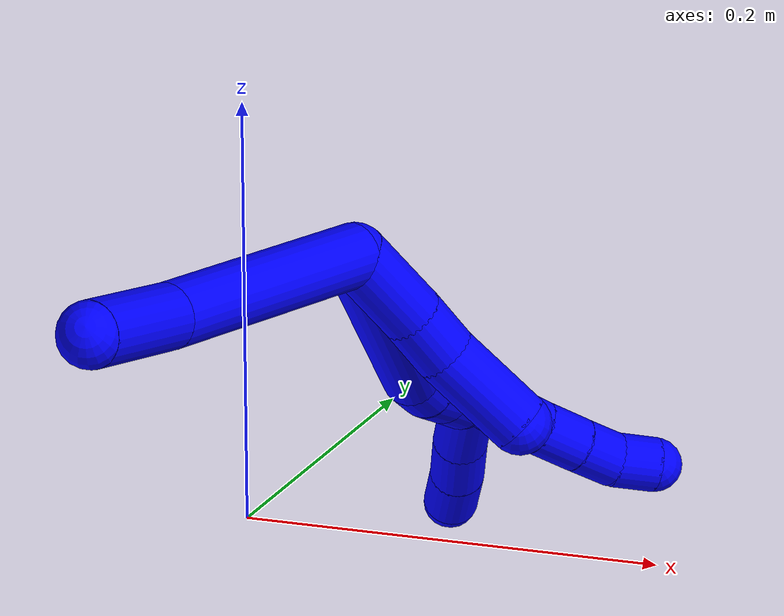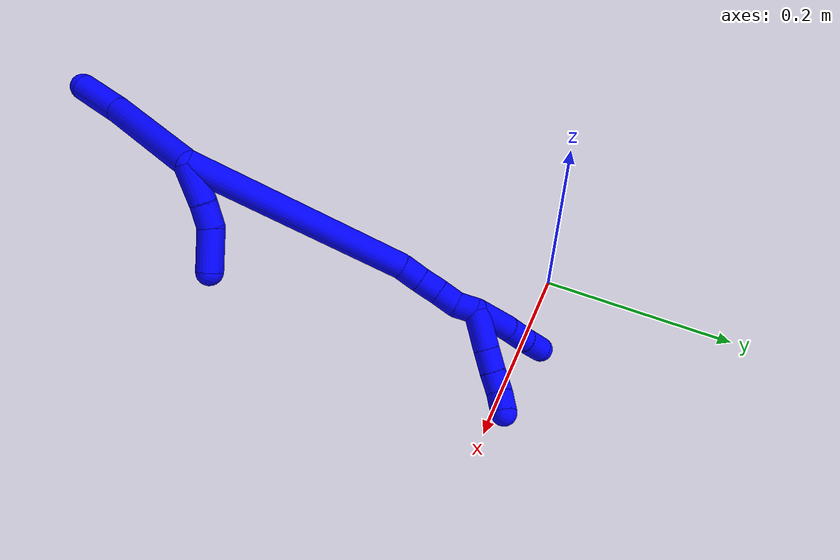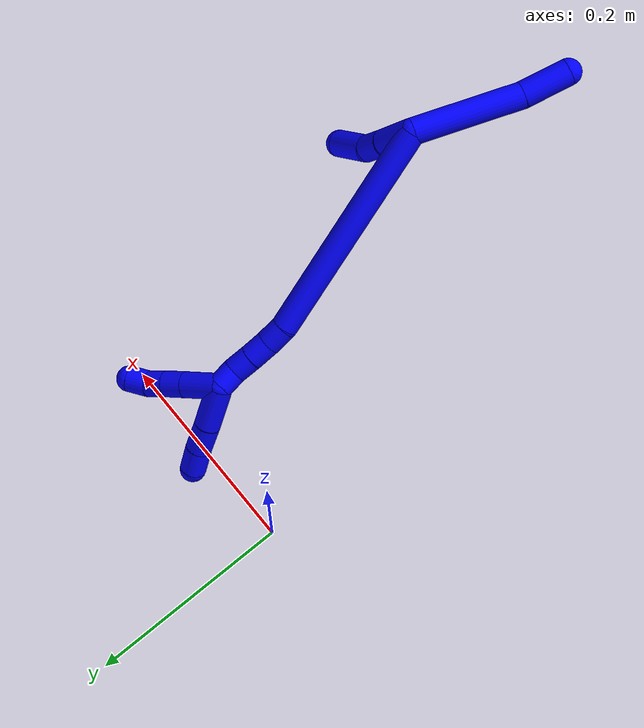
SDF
<sdf version="1.7">
 <world name="default">
  <model name="1">
   <static>0</static>
   <link name="1">
    <collision name="collision-cylinder-e_1_2_8">
     <pose>0.035042 0.009426 0.037228 -0.247975 0.739671 -0.096554</pose>
     <geometry><cylinder><radius>0.0125</radius><length>0.103975</length></cylinder></geometry>
     <surface>
      <friction><ode><mu>1.16</mu><mu2>1.16</mu2><slip1>0</slip1><slip2>0</slip2></ode></friction>
      <contact><ode><kp>1e+06</kp><kd>1</kd><max_vel>0</max_vel><min_depth>0.001</min_depth></ode></contact>
     </surface>
    </collision>
    <visual name="visual-cylinder-e_1_2_8">
     <pose>0.035042 0.009426 0.037228 -0.247975 0.739671 -0.096554</pose>
     <geometry><cylinder><radius>0.0125</radius><length>0.103975</length></cylinder></geometry>
     <material><ambient>0 0 1 1</ambient></material>
    </visual>
    <collision name="collision-cylinder-e_2_8_6">
     <pose>0.082821 0.022441 0.093282 -0.188404 0.586578 -0.057051</pose>
     <geometry><cylinder><radius>0.0125</radius><length>0.046025</length></cylinder></geometry>
     <surface>
      <friction><ode><mu>1.16</mu><mu2>1.16</mu2><slip1>0</slip1><slip2>0</slip2></ode></friction>
      <contact><ode><kp>1e+06</kp><kd>1</kd><max_vel>0</max_vel><min_depth>0.001</min_depth></ode></contact>
     </surface>
    </collision>
    <visual name="visual-cylinder-e_2_8_6">
     <pose>0.082821 0.022441 0.093282 -0.188404 0.586578 -0.057051</pose>
     <geometry><cylinder><radius>0.0125</radius><length>0.046025</length></cylinder></geometry>
     <material><ambient>0 0 1 1</ambient></material>
    </visual>
    <collision name="collision-cylinder-e_1_2_9">
     <pose>-0.006557 0.011292 -0.013206 -2.4342 -0.360854 0.917732</pose>
     <geometry><cylinder><radius>0.0125</radius><length>0.037143</length></cylinder></geometry>
     <surface>
      <friction><ode><mu>1.16</mu><mu2>1.16</mu2><slip1>0</slip1><slip2>0</slip2></ode></friction>
      <contact><ode><kp>1e+06</kp><kd>1</kd><max_vel>0</max_vel><min_depth>0.001</min_depth></ode></contact>
     </surface>
    </collision>
    <visual name="visual-cylinder-e_1_2_9">
     <pose>-0.006557 0.011292 -0.013206 -2.4342 -0.360854 0.917732</pose>
     <geometry><cylinder><radius>0.0125</radius><length>0.037143</length></cylinder></geometry>
     <material><ambient>0 0 1 1</ambient></material>
    </visual>
    <collision name="collision-cylinder-e_2_9_10">
     <pose>-0.016879 0.03031 -0.033884 -2.33939 -0.336915 0.762773</pose>
     <geometry><cylinder><radius>0.0125</radius><length>0.022776</length></cylinder></geometry>
     <surface>
      <friction><ode><mu>1.16</mu><mu2>1.16</mu2><slip1>0</slip1><slip2>0</slip2></ode></friction>
      <contact><ode><kp>1e+06</kp><kd>1</kd><max_vel>0</max_vel><min_depth>0.001</min_depth></ode></contact>
     </surface>
    </collision>
    <visual name="visual-cylinder-e_2_9_10">
     <pose>-0.016879 0.03031 -0.033884 -2.33939 -0.336915 0.762773</pose>
     <geometry><cylinder><radius>0.0125</radius><length>0.022776</length></cylinder></geometry>
     <material><ambient>0 0 1 1</ambient></material>
    </visual>
    <collision name="collision-cylinder-e_3_10_5">
     <pose>-0.030063 0.05408 -0.048803 -2.00542 -0.489297 0.745682</pose>
     <geometry><cylinder><radius>0.0125</radius><length>0.040081</length></cylinder></geometry>
     <surface>
      <friction><ode><mu>1.16</mu><mu2>1.16</mu2><slip1>0</slip1><slip2>0</slip2></ode></friction>
      <contact><ode><kp>1e+06</kp><kd>1</kd><max_vel>0</max_vel><min_depth>0.001</min_depth></ode></contact>
     </surface>
    </collision>
    <visual name="visual-cylinder-e_3_10_5">
     <pose>-0.030063 0.05408 -0.048803 -2.00542 -0.489297 0.745682</pose>
     <geometry><cylinder><radius>0.0125</radius><length>0.040081</length></cylinder></geometry>
     <material><ambient>0 0 1 1</ambient></material>
    </visual>
    <collision name="collision-cylinder-e_1_2_11">
     <pose>-0.002213 0.001608 -0.107829 -3.12668 -0.020521 1.88472</pose>
     <geometry><cylinder><radius>0.0125</radius><length>0.215728</length></cylinder></geometry>
     <surface>
      <friction><ode><mu>1.16</mu><mu2>1.16</mu2><slip1>0</slip1><slip2>0</slip2></ode></friction>
      <contact><ode><kp>1e+06</kp><kd>1</kd><max_vel>0</max_vel><min_depth>0.001</min_depth></ode></contact>
     </surface>
    </collision>
    <visual name="visual-cylinder-e_1_2_11">
     <pose>-0.002213 0.001608 -0.107829 -3.12668 -0.020521 1.88472</pose>
     <geometry><cylinder><radius>0.0125</radius><length>0.215728</length></cylinder></geometry>
     <material><ambient>0 0 1 1</ambient></material>
    </visual>
    <collision name="collision-cylinder-e_2_11_12">
     <pose>-0.006609 0.004516 -0.226307 -3.02013 -0.200658 2.05487</pose>
     <geometry><cylinder><radius>0.0125</radius><length>0.021894</length></cylinder></geometry>
     <surface>
      <friction><ode><mu>1.16</mu><mu2>1.16</mu2><slip1>0</slip1><slip2>0</slip2></ode></friction>
      <contact><ode><kp>1e+06</kp><kd>1</kd><max_vel>0</max_vel><min_depth>0.001</min_depth></ode></contact>
     </surface>
    </collision>
    <visual name="visual-cylinder-e_2_11_12">
     <pose>-0.006609 0.004516 -0.226307 -3.02013 -0.200658 2.05487</pose>
     <geometry><cylinder><radius>0.0125</radius><length>0.021894</length></cylinder></geometry>
     <material><ambient>0 0 1 1</ambient></material>
    </visual>
    <collision name="collision-cylinder-e_3_12_13">
     <pose>-0.011973 0.005909 -0.247324 -3.13266 -0.297775 3.08203</pose>
     <geometry><cylinder><radius>0.0125</radius><length>0.021691</length></cylinder></geometry>
     <surface>
      <friction><ode><mu>1.16</mu><mu2>1.16</mu2><slip1>0</slip1><slip2>0</slip2></ode></friction>
      <contact><ode><kp>1e+06</kp><kd>1</kd><max_vel>0</max_vel><min_depth>0.001</min_depth></ode></contact>
     </surface>
    </collision>
    <visual name="visual-cylinder-e_3_12_13">
     <pose>-0.011973 0.005909 -0.247324 -3.13266 -0.297775 3.08203</pose>
     <geometry><cylinder><radius>0.0125</radius><length>0.021691</length></cylinder></geometry>
     <material><ambient>0 0 1 1</ambient></material>
    </visual>
    <collision name="collision-cylinder-e_4_13_14">
     <pose>-0.018378 0.006458 -0.267468 -3.09492 -0.318176 2.85265</pose>
     <geometry><cylinder><radius>0.0125</radius><length>0.020609</length></cylinder></geometry>
     <surface>
      <friction><ode><mu>1.16</mu><mu2>1.16</mu2><slip1>0</slip1><slip2>0</slip2></ode></friction>
      <contact><ode><kp>1e+06</kp><kd>1</kd><max_vel>0</max_vel><min_depth>0.001</min_depth></ode></contact>
     </surface>
    </collision>
    <visual name="visual-cylinder-e_4_13_14">
     <pose>-0.018378 0.006458 -0.267468 -3.09492 -0.318176 2.85265</pose>
     <geometry><cylinder><radius>0.0125</radius><length>0.020609</length></cylinder></geometry>
     <material><ambient>0 0 1 1</ambient></material>
    </visual>
    <collision name="collision-cylinder-e_5_14_1">
     <pose>-0.024095 0.004098 -0.286552 2.84767 -0.251006 -1.41166</pose>
     <geometry><cylinder><radius>0.0125</radius><length>0.020077</length></cylinder></geometry>
     <surface>
      <friction><ode><mu>1.16</mu><mu2>1.16</mu2><slip1>0</slip1><slip2>0</slip2></ode></friction>
      <contact><ode><kp>1e+06</kp><kd>1</kd><max_vel>0</max_vel><min_depth>0.001</min_depth></ode></contact>
     </surface>
    </collision>
    <visual name="visual-cylinder-e_5_14_1">
     <pose>-0.024095 0.004098 -0.286552 2.84767 -0.251006 -1.41166</pose>
     <geometry><cylinder><radius>0.0125</radius><length>0.020077</length></cylinder></geometry>
     <material><ambient>0 0 1 1</ambient></material>
    </visual>
    <collision name="collision-cylinder-e_1_1_15">
     <pose>-0.038981 0.011217 -0.306429 -2.3871 -0.706933 1.49957</pose>
     <geometry><cylinder><radius>0.0125</radius><length>0.038159</length></cylinder></geometry>
     <surface>
      <friction><ode><mu>1.16</mu><mu2>1.16</mu2><slip1>0</slip1><slip2>0</slip2></ode></friction>
      <contact><ode><kp>1e+06</kp><kd>1</kd><max_vel>0</max_vel><min_depth>0.001</min_depth></ode></contact>
     </surface>
    </collision>
    <visual name="visual-cylinder-e_1_1_15">
     <pose>-0.038981 0.011217 -0.306429 -2.3871 -0.706933 1.49957</pose>
     <geometry><cylinder><radius>0.0125</radius><length>0.038159</length></cylinder></geometry>
     <material><ambient>0 0 1 1</ambient></material>
    </visual>
    <collision name="collision-cylinder-e_2_15_16">
     <pose>-0.058616 0.026562 -0.323096 -2.41594 -0.726503 1.57208</pose>
     <geometry><cylinder><radius>0.0125</radius><length>0.021807</length></cylinder></geometry>
     <surface>
      <friction><ode><mu>1.16</mu><mu2>1.16</mu2><slip1>0</slip1><slip2>0</slip2></ode></friction>
      <contact><ode><kp>1e+06</kp><kd>1</kd><max_vel>0</max_vel><min_depth>0.001</min_depth></ode></contact>
     </surface>
    </collision>
    <visual name="visual-cylinder-e_2_15_16">
     <pose>-0.058616 0.026562 -0.323096 -2.41594 -0.726503 1.57208</pose>
     <geometry><cylinder><radius>0.0125</radius><length>0.021807</length></cylinder></geometry>
     <material><ambient>0 0 1 1</ambient></material>
    </visual>
    <collision name="collision-cylinder-e_3_16_17">
     <pose>-0.072462 0.03661 -0.335112 -2.47683 -0.7206 1.65817</pose>
     <geometry><cylinder><radius>0.0125</radius><length>0.020017</length></cylinder></geometry>
     <surface>
      <friction><ode><mu>1.16</mu><mu2>1.16</mu2><slip1>0</slip1><slip2>0</slip2></ode></friction>
      <contact><ode><kp>1e+06</kp><kd>1</kd><max_vel>0</max_vel><min_depth>0.001</min_depth></ode></contact>
     </surface>
    </collision>
    <visual name="visual-cylinder-e_3_16_17">
     <pose>-0.072462 0.03661 -0.335112 -2.47683 -0.7206 1.65817</pose>
     <geometry><cylinder><radius>0.0125</radius><length>0.020017</length></cylinder></geometry>
     <material><ambient>0 0 1 1</ambient></material>
    </visual>
    <collision name="collision-cylinder-e_4_17_4">
     <pose>-0.087746 0.044724 -0.344603 -2.36994 -1.04964 1.91806</pose>
     <geometry><cylinder><radius>0.0125</radius><length>0.020017</length></cylinder></geometry>
     <surface>
      <friction><ode><mu>1.16</mu><mu2>1.16</mu2><slip1>0</slip1><slip2>0</slip2></ode></friction>
      <contact><ode><kp>1e+06</kp><kd>1</kd><max_vel>0</max_vel><min_depth>0.001</min_depth></ode></contact>
     </surface>
    </collision>
    <visual name="visual-cylinder-e_4_17_4">
     <pose>-0.087746 0.044724 -0.344603 -2.36994 -1.04964 1.91806</pose>
     <geometry><cylinder><radius>0.0125</radius><length>0.020017</length></cylinder></geometry>
     <material><ambient>0 0 1 1</ambient></material>
    </visual>
    <collision name="collision-cylinder-e_1_1_18">
     <pose>-0.021312 0.006106 -0.316945 -2.91662 0.239247 -1.63281</pose>
     <geometry><cylinder><radius>0.0125</radius><length>0.044531</length></cylinder></geometry>
     <surface>
      <friction><ode><mu>1.16</mu><mu2>1.16</mu2><slip1>0</slip1><slip2>0</slip2></ode></friction>
      <contact><ode><kp>1e+06</kp><kd>1</kd><max_vel>0</max_vel><min_depth>0.001</min_depth></ode></contact>
     </surface>
    </collision>
    <visual name="visual-cylinder-e_1_1_18">
     <pose>-0.021312 0.006106 -0.316945 -2.91662 0.239247 -1.63281</pose>
     <geometry><cylinder><radius>0.0125</radius><length>0.044531</length></cylinder></geometry>
     <material><ambient>0 0 1 1</ambient></material>
    </visual>
    <collision name="collision-cylinder-e_2_18_19">
     <pose>-0.012971 0.015128 -0.351907 -2.84788 0.208377 -1.2307</pose>
     <geometry><cylinder><radius>0.0125</radius><length>0.029633</length></cylinder></geometry>
     <surface>
      <friction><ode><mu>1.16</mu><mu2>1.16</mu2><slip1>0</slip1><slip2>0</slip2></ode></friction>
      <contact><ode><kp>1e+06</kp><kd>1</kd><max_vel>0</max_vel><min_depth>0.001</min_depth></ode></contact>
     </surface>
    </collision>
    <visual name="visual-cylinder-e_2_18_19">
     <pose>-0.012971 0.015128 -0.351907 -2.84788 0.208377 -1.2307</pose>
     <geometry><cylinder><radius>0.0125</radius><length>0.029633</length></cylinder></geometry>
     <material><ambient>0 0 1 1</ambient></material>
    </visual>
    <collision name="collision-cylinder-e_3_19_3">
     <pose>-0.006365 0.022754 -0.377723 -2.86197 0.277622 -1.56353</pose>
     <geometry><cylinder><radius>0.0125</radius><length>0.025836</length></cylinder></geometry>
     <surface>
      <friction><ode><mu>1.16</mu><mu2>1.16</mu2><slip1>0</slip1><slip2>0</slip2></ode></friction>
      <contact><ode><kp>1e+06</kp><kd>1</kd><max_vel>0</max_vel><min_depth>0.001</min_depth></ode></contact>
     </surface>
    </collision>
    <visual name="visual-cylinder-e_3_19_3">
     <pose>-0.006365 0.022754 -0.377723 -2.86197 0.277622 -1.56353</pose>
     <geometry><cylinder><radius>0.0125</radius><length>0.025836</length></cylinder></geometry>
     <material><ambient>0 0 1 1</ambient></material>
    </visual>
    <collision name="collision-sphere-3">
     <pose>-0.002825 0.026183 -0.389663 0 -0 0</pose>
     <geometry><sphere><radius>0.0125</radius></sphere></geometry>
     <surface>
      <friction><ode><mu>1.16</mu><mu2>1.16</mu2><slip1>0</slip1><slip2>0</slip2></ode></friction>
      <contact><ode><kp>1e+06</kp><kd>1</kd><max_vel>0</max_vel><min_depth>0.001</min_depth></ode></contact>
     </surface>
    </collision>
    <visual name="visual-sphere-3">
     <pose>-0.002825 0.026183 -0.389663 0 -0 0</pose>
     <geometry><sphere><radius>0.0125</radius></sphere></geometry>
     <material><ambient>0 0 1 1</ambient></material>
    </visual>
    <collision name="collision-sphere-19">
     <pose>-0.009906 0.019325 -0.365782 0 -0 0</pose>
     <geometry><sphere><radius>0.0125</radius></sphere></geometry>
     <surface>
      <friction><ode><mu>1.16</mu><mu2>1.16</mu2><slip1>0</slip1><slip2>0</slip2></ode></friction>
      <contact><ode><kp>1e+06</kp><kd>1</kd><max_vel>0</max_vel><min_depth>0.001</min_depth></ode></contact>
     </surface>
    </collision>
    <visual name="visual-sphere-19">
     <pose>-0.009906 0.019325 -0.365782 0 -0 0</pose>
     <geometry><sphere><radius>0.0125</radius></sphere></geometry>
     <material><ambient>0 0 1 1</ambient></material>
    </visual>
    <collision name="collision-sphere-5">
     <pose>-0.039482 0.070125 -0.056252 0 -0 0</pose>
     <geometry><sphere><radius>0.0125</radius></sphere></geometry>
     <surface>
      <friction><ode><mu>1.16</mu><mu2>1.16</mu2><slip1>0</slip1><slip2>0</slip2></ode></friction>
      <contact><ode><kp>1e+06</kp><kd>1</kd><max_vel>0</max_vel><min_depth>0.001</min_depth></ode></contact>
     </surface>
    </collision>
    <visual name="visual-sphere-5">
     <pose>-0.039482 0.070125 -0.056252 0 -0 0</pose>
     <geometry><sphere><radius>0.0125</radius></sphere></geometry>
     <material><ambient>0 0 1 1</ambient></material>
    </visual>
    <collision name="collision-sphere-10">
     <pose>-0.020643 0.038036 -0.041355 0 -0 0</pose>
     <geometry><sphere><radius>0.0125</radius></sphere></geometry>
     <surface>
      <friction><ode><mu>1.16</mu><mu2>1.16</mu2><slip1>0</slip1><slip2>0</slip2></ode></friction>
      <contact><ode><kp>1e+06</kp><kd>1</kd><max_vel>0</max_vel><min_depth>0.001</min_depth></ode></contact>
     </surface>
    </collision>
    <visual name="visual-sphere-10">
     <pose>-0.020643 0.038036 -0.041355 0 -0 0</pose>
     <geometry><sphere><radius>0.0125</radius></sphere></geometry>
     <material><ambient>0 0 1 1</ambient></material>
    </visual>
    <collision name="collision-sphere-6">
     <pose>0.095559 0.02603 0.112109 0 -0 0</pose>
     <geometry><sphere><radius>0.0125</radius></sphere></geometry>
     <surface>
      <friction><ode><mu>1.16</mu><mu2>1.16</mu2><slip1>0</slip1><slip2>0</slip2></ode></friction>
      <contact><ode><kp>1e+06</kp><kd>1</kd><max_vel>0</max_vel><min_depth>0.001</min_depth></ode></contact>
     </surface>
    </collision>
    <visual name="visual-sphere-6">
     <pose>0.095559 0.02603 0.112109 0 -0 0</pose>
     <geometry><sphere><radius>0.0125</radius></sphere></geometry>
     <material><ambient>0 0 1 1</ambient></material>
    </visual>
    <collision name="collision-sphere-9">
     <pose>-0.013114 0.022583 -0.026413 0 -0 0</pose>
     <geometry><sphere><radius>0.0125</radius></sphere></geometry>
     <surface>
      <friction><ode><mu>1.16</mu><mu2>1.16</mu2><slip1>0</slip1><slip2>0</slip2></ode></friction>
      <contact><ode><kp>1e+06</kp><kd>1</kd><max_vel>0</max_vel><min_depth>0.001</min_depth></ode></contact>
     </surface>
    </collision>
    <visual name="visual-sphere-9">
     <pose>-0.013114 0.022583 -0.026413 0 -0 0</pose>
     <geometry><sphere><radius>0.0125</radius></sphere></geometry>
     <material><ambient>0 0 1 1</ambient></material>
    </visual>
    <collision name="collision-sphere-2">
     <geometry><sphere><radius>0.0125</radius></sphere></geometry>
     <surface>
      <friction><ode><mu>1.16</mu><mu2>1.16</mu2><slip1>0</slip1><slip2>0</slip2></ode></friction>
      <contact><ode><kp>1e+06</kp><kd>1</kd><max_vel>0</max_vel><min_depth>0.001</min_depth></ode></contact>
     </surface>
    </collision>
    <visual name="visual-sphere-2">
     <geometry><sphere><radius>0.0125</radius></sphere></geometry>
     <material><ambient>0 0 1 1</ambient></material>
    </visual>
    <collision name="collision-sphere-8">
     <pose>0.070084 0.018851 0.074456 0 -0 0</pose>
     <geometry><sphere><radius>0.0125</radius></sphere></geometry>
     <surface>
      <friction><ode><mu>1.16</mu><mu2>1.16</mu2><slip1>0</slip1><slip2>0</slip2></ode></friction>
      <contact><ode><kp>1e+06</kp><kd>1</kd><max_vel>0</max_vel><min_depth>0.001</min_depth></ode></contact>
     </surface>
    </collision>
    <visual name="visual-sphere-8">
     <pose>0.070084 0.018851 0.074456 0 -0 0</pose>
     <geometry><sphere><radius>0.0125</radius></sphere></geometry>
     <material><ambient>0 0 1 1</ambient></material>
    </visual>
    <collision name="collision-sphere-11">
     <pose>-0.004427 0.003216 -0.215659 0 -0 0</pose>
     <geometry><sphere><radius>0.0125</radius></sphere></geometry>
     <surface>
      <friction><ode><mu>1.16</mu><mu2>1.16</mu2><slip1>0</slip1><slip2>0</slip2></ode></friction>
      <contact><ode><kp>1e+06</kp><kd>1</kd><max_vel>0</max_vel><min_depth>0.001</min_depth></ode></contact>
     </surface>
    </collision>
    <visual name="visual-sphere-11">
     <pose>-0.004427 0.003216 -0.215659 0 -0 0</pose>
     <geometry><sphere><radius>0.0125</radius></sphere></geometry>
     <material><ambient>0 0 1 1</ambient></material>
    </visual>
    <collision name="collision-sphere-12">
     <pose>-0.008791 0.005816 -0.236956 0 -0 0</pose>
     <geometry><sphere><radius>0.0125</radius></sphere></geometry>
     <surface>
      <friction><ode><mu>1.16</mu><mu2>1.16</mu2><slip1>0</slip1><slip2>0</slip2></ode></friction>
      <contact><ode><kp>1e+06</kp><kd>1</kd><max_vel>0</max_vel><min_depth>0.001</min_depth></ode></contact>
     </surface>
    </collision>
    <visual name="visual-sphere-12">
     <pose>-0.008791 0.005816 -0.236956 0 -0 0</pose>
     <geometry><sphere><radius>0.0125</radius></sphere></geometry>
     <material><ambient>0 0 1 1</ambient></material>
    </visual>
    <collision name="collision-sphere-13">
     <pose>-0.015155 0.006001 -0.257692 0 -0 0</pose>
     <geometry><sphere><radius>0.0125</radius></sphere></geometry>
     <surface>
      <friction><ode><mu>1.16</mu><mu2>1.16</mu2><slip1>0</slip1><slip2>0</slip2></ode></friction>
      <contact><ode><kp>1e+06</kp><kd>1</kd><max_vel>0</max_vel><min_depth>0.001</min_depth></ode></contact>
     </surface>
    </collision>
    <visual name="visual-sphere-13">
     <pose>-0.015155 0.006001 -0.257692 0 -0 0</pose>
     <geometry><sphere><radius>0.0125</radius></sphere></geometry>
     <material><ambient>0 0 1 1</ambient></material>
    </visual>
    <collision name="collision-sphere-14">
     <pose>-0.021602 0.006915 -0.277245 0 -0 0</pose>
     <geometry><sphere><radius>0.0125</radius></sphere></geometry>
     <surface>
      <friction><ode><mu>1.16</mu><mu2>1.16</mu2><slip1>0</slip1><slip2>0</slip2></ode></friction>
      <contact><ode><kp>1e+06</kp><kd>1</kd><max_vel>0</max_vel><min_depth>0.001</min_depth></ode></contact>
     </surface>
    </collision>
    <visual name="visual-sphere-14">
     <pose>-0.021602 0.006915 -0.277245 0 -0 0</pose>
     <geometry><sphere><radius>0.0125</radius></sphere></geometry>
     <material><ambient>0 0 1 1</ambient></material>
    </visual>
    <collision name="collision-sphere-1">
     <pose>-0.026589 0.00128 -0.295859 0 -0 0</pose>
     <geometry><sphere><radius>0.0125</radius></sphere></geometry>
     <surface>
      <friction><ode><mu>1.16</mu><mu2>1.16</mu2><slip1>0</slip1><slip2>0</slip2></ode></friction>
      <contact><ode><kp>1e+06</kp><kd>1</kd><max_vel>0</max_vel><min_depth>0.001</min_depth></ode></contact>
     </surface>
    </collision>
    <visual name="visual-sphere-1">
     <pose>-0.026589 0.00128 -0.295859 0 -0 0</pose>
     <geometry><sphere><radius>0.0125</radius></sphere></geometry>
     <material><ambient>0 0 1 1</ambient></material>
    </visual>
    <collision name="collision-sphere-18">
     <pose>-0.016036 0.010932 -0.338031 0 -0 0</pose>
     <geometry><sphere><radius>0.0125</radius></sphere></geometry>
     <surface>
      <friction><ode><mu>1.16</mu><mu2>1.16</mu2><slip1>0</slip1><slip2>0</slip2></ode></friction>
      <contact><ode><kp>1e+06</kp><kd>1</kd><max_vel>0</max_vel><min_depth>0.001</min_depth></ode></contact>
     </surface>
    </collision>
    <visual name="visual-sphere-18">
     <pose>-0.016036 0.010932 -0.338031 0 -0 0</pose>
     <geometry><sphere><radius>0.0125</radius></sphere></geometry>
     <material><ambient>0 0 1 1</ambient></material>
    </visual>
    <collision name="collision-sphere-15">
     <pose>-0.051373 0.021153 -0.316999 0 -0 0</pose>
     <geometry><sphere><radius>0.0125</radius></sphere></geometry>
     <surface>
      <friction><ode><mu>1.16</mu><mu2>1.16</mu2><slip1>0</slip1><slip2>0</slip2></ode></friction>
      <contact><ode><kp>1e+06</kp><kd>1</kd><max_vel>0</max_vel><min_depth>0.001</min_depth></ode></contact>
     </surface>
    </collision>
    <visual name="visual-sphere-15">
     <pose>-0.051373 0.021153 -0.316999 0 -0 0</pose>
     <geometry><sphere><radius>0.0125</radius></sphere></geometry>
     <material><ambient>0 0 1 1</ambient></material>
    </visual>
    <collision name="collision-sphere-16">
     <pose>-0.065858 0.03197 -0.329193 0 -0 0</pose>
     <geometry><sphere><radius>0.0125</radius></sphere></geometry>
     <surface>
      <friction><ode><mu>1.16</mu><mu2>1.16</mu2><slip1>0</slip1><slip2>0</slip2></ode></friction>
      <contact><ode><kp>1e+06</kp><kd>1</kd><max_vel>0</max_vel><min_depth>0.001</min_depth></ode></contact>
     </surface>
    </collision>
    <visual name="visual-sphere-16">
     <pose>-0.065858 0.03197 -0.329193 0 -0 0</pose>
     <geometry><sphere><radius>0.0125</radius></sphere></geometry>
     <material><ambient>0 0 1 1</ambient></material>
    </visual>
    <collision name="collision-sphere-17">
     <pose>-0.079066 0.041249 -0.341032 0 -0 0</pose>
     <geometry><sphere><radius>0.0125</radius></sphere></geometry>
     <surface>
      <friction><ode><mu>1.16</mu><mu2>1.16</mu2><slip1>0</slip1><slip2>0</slip2></ode></friction>
      <contact><ode><kp>1e+06</kp><kd>1</kd><max_vel>0</max_vel><min_depth>0.001</min_depth></ode></contact>
     </surface>
    </collision>
    <visual name="visual-sphere-17">
     <pose>-0.079066 0.041249 -0.341032 0 -0 0</pose>
     <geometry><sphere><radius>0.0125</radius></sphere></geometry>
     <material><ambient>0 0 1 1</ambient></material>
    </visual>
    <collision name="collision-sphere-4">
     <pose>-0.096426 0.048198 -0.348175 0 -0 0</pose>
     <geometry><sphere><radius>0.0125</radius></sphere></geometry>
     <surface>
      <friction><ode><mu>1.16</mu><mu2>1.16</mu2><slip1>0</slip1><slip2>0</slip2></ode></friction>
      <contact><ode><kp>1e+06</kp><kd>1</kd><max_vel>0</max_vel><min_depth>0.001</min_depth></ode></contact>
     </surface>
    </collision>
    <visual name="visual-sphere-4">
     <pose>-0.096426 0.048198 -0.348175 0 -0 0</pose>
     <geometry><sphere><radius>0.0125</radius></sphere></geometry>
     <material><ambient>0 0 1 1</ambient></material>
    </visual>
    <inertial>
     <pose>-0.00479 0.013364 -0.142062 0 -0 0</pose>
     <mass>0.75</mass>
     <inertia>
      <ixx>0.000624</ixx>
      <ixy>0</ixy>
      <ixz>0</ixz>
      <iyy>0.001187</iyy>
      <iyz>0</iyz>
      <izz>-0.000124</izz>
     </inertia>
    </inertial>
   </link>
   <pose>0.167826 -0.300667 0.220873 -1.03965 0.308289 -2.70317</pose>
  </model>
 </world>
</sdf>
